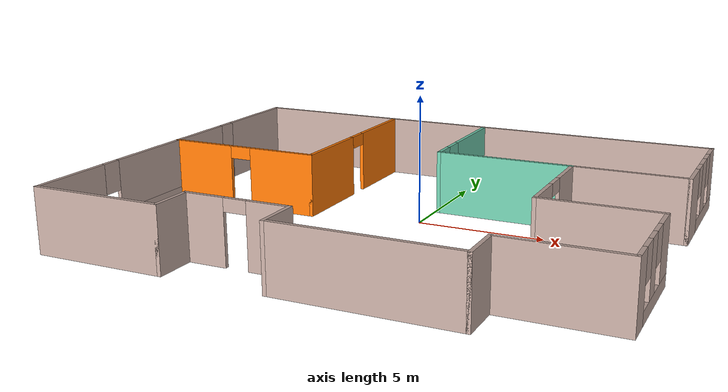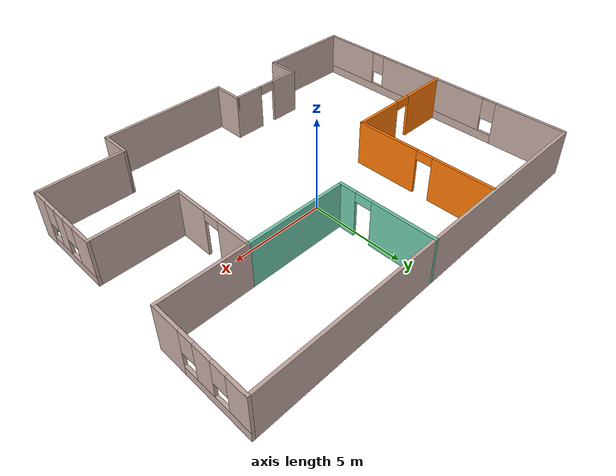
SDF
<?xml version='1.0'?>
<sdf version='1.6'>
  <model name='Office'>
    <pose frame=''>-0.377095 -1.10442 0 0 -0 0</pose>
    <link name='Wall_12'>
      <pose frame=''>-10.1892 -0.024999 0 0 0 -1.5708</pose>
      <visual name='Wall_12_Visual_0'>
        <pose frame=''>-5.93121 0 1.25 0 -0 0</pose>
        <geometry>
          <box>
            <size>3.88759 0.15 2.5</size>
          </box>
        </geometry>
        <material>
          <script>
            <uri>file://media/materials/scripts/gazebo.material</uri>
            <name>Gazebo/Grey</name>
          </script>
          <ambient>0.760784 0.662745 0.627451 1</ambient>
        </material>
        <meta>
          <layer>0</layer>
        </meta>
      </visual>
      <collision name='Wall_12_Collision_0'>
        <geometry>
          <box>
            <size>3.88759 0.15 2.5</size>
          </box>
        </geometry>
        <pose frame=''>-5.93121 0 1.25 0 -0 0</pose>
      </collision>
      <visual name='Wall_12_Visual_1'>
        <pose frame=''>1.94379 0 0.25 0 -0 0</pose>
        <geometry>
          <box>
            <size>11.8624 0.15 0.5</size>
          </box>
        </geometry>
        <material>
          <script>
            <uri>file://media/materials/scripts/gazebo.material</uri>
            <name>Gazebo/Grey</name>
          </script>
          <ambient>0.760784 0.662745 0.627451 1</ambient>
        </material>
        <meta>
          <layer>0</layer>
        </meta>
      </visual>
      <collision name='Wall_12_Collision_1'>
        <geometry>
          <box>
            <size>11.8624 0.15 0.5</size>
          </box>
        </geometry>
        <pose frame=''>1.94379 0 0.25 0 -0 0</pose>
      </collision>
      <visual name='Wall_12_Visual_2'>
        <pose frame=''>0.229137 0 1.5 0 -0 0</pose>
        <geometry>
          <box>
            <size>6.8331 0.15 2</size>
          </box>
        </geometry>
        <material>
          <script>
            <uri>file://media/materials/scripts/gazebo.material</uri>
            <name>Gazebo/Grey</name>
          </script>
          <ambient>0.760784 0.662745 0.627451 1</ambient>
        </material>
        <meta>
          <layer>0</layer>
        </meta>
      </visual>
      <collision name='Wall_12_Collision_2'>
        <geometry>
          <box>
            <size>6.8331 0.15 2</size>
          </box>
        </geometry>
        <pose frame=''>0.229137 0 1.5 0 -0 0</pose>
      </collision>
      <visual name='Wall_12_Visual_3'>
        <pose frame=''>6.16034 0 1.5 0 -0 0</pose>
        <geometry>
          <box>
            <size>3.42931 0.15 2</size>
          </box>
        </geometry>
        <material>
          <script>
            <uri>file://media/materials/scripts/gazebo.material</uri>
            <name>Gazebo/Grey</name>
          </script>
          <ambient>0.760784 0.662745 0.627451 1</ambient>
        </material>
        <meta>
          <layer>0</layer>
        </meta>
      </visual>
      <collision name='Wall_12_Collision_3'>
        <geometry>
          <box>
            <size>3.42931 0.15 2</size>
          </box>
        </geometry>
        <pose frame=''>6.16034 0 1.5 0 -0 0</pose>
      </collision>
      <visual name='Wall_12_Visual_4'>
        <pose frame=''>-3.58741 0 1.9 0 -0 0</pose>
        <geometry>
          <box>
            <size>0.8 0.15 1.2</size>
          </box>
        </geometry>
        <material>
          <script>
            <uri>file://media/materials/scripts/gazebo.material</uri>
            <name>Gazebo/Grey</name>
          </script>
          <ambient>0.760784 0.662745 0.627451 1</ambient>
        </material>
        <meta>
          <layer>0</layer>
        </meta>
      </visual>
      <collision name='Wall_12_Collision_4'>
        <geometry>
          <box>
            <size>0.8 0.15 1.2</size>
          </box>
        </geometry>
        <pose frame=''>-3.58741 0 1.9 0 -0 0</pose>
      </collision>
      <visual name='Wall_12_Visual_5'>
        <pose frame=''>4.04569 0 1.9 0 -0 0</pose>
        <geometry>
          <box>
            <size>0.8 0.15 1.2</size>
          </box>
        </geometry>
        <material>
          <script>
            <uri>file://media/materials/scripts/gazebo.material</uri>
            <name>Gazebo/Grey</name>
          </script>
          <ambient>0.760784 0.662745 0.627451 1</ambient>
        </material>
        <meta>
          <layer>0</layer>
        </meta>
      </visual>
      <collision name='Wall_12_Collision_5'>
        <geometry>
          <box>
            <size>0.8 0.15 1.2</size>
          </box>
        </geometry>
        <pose frame=''>4.04569 0 1.9 0 -0 0</pose>
      </collision>
    </link>
    <link name='Wall_13'>
      <collision name='Wall_13_Collision'>
        <geometry>
          <box>
            <size>5.25 0.15 2.5</size>
          </box>
        </geometry>
        <pose frame=''>0 0 1.25 0 -0 0</pose>
      </collision>
      <visual name='Wall_13_Visual'>
        <pose frame=''>0 0 1.25 0 -0 0</pose>
        <geometry>
          <box>
            <size>5.25 0.15 2.5</size>
          </box>
        </geometry>
        <material>
          <script>
            <uri>file://media/materials/scripts/gazebo.material</uri>
            <name>Gazebo/Grey</name>
          </script>
          <ambient>0.760784 0.662745 0.627451 1</ambient>
        </material>
        <meta>
          <layer>0</layer>
        </meta>
      </visual>
      <pose frame=''>-7.63921 -7.825 0 0 -0 0</pose>
    </link>
    <link name='Wall_14'>
      <collision name='Wall_14_Collision'>
        <geometry>
          <box>
            <size>1.75 0.15 2.5</size>
          </box>
        </geometry>
        <pose frame=''>0 0 1.25 0 -0 0</pose>
      </collision>
      <visual name='Wall_14_Visual'>
        <pose frame=''>0 0 1.25 0 -0 0</pose>
        <geometry>
          <box>
            <size>1.75 0.15 2.5</size>
          </box>
        </geometry>
        <material>
          <script>
            <uri>file://media/materials/scripts/gazebo.material</uri>
            <name>Gazebo/Grey</name>
          </script>
          <ambient>0.760784 0.662745 0.627451 1</ambient>
        </material>
        <meta>
          <layer>0</layer>
        </meta>
      </visual>
      <pose frame=''>-5.08921 -7.025 0 0 -0 1.5708</pose>
    </link>
    <link name='Wall_15'>
      <pose frame=''>-3.03921 -6.225 0 0 -0 0</pose>
      <visual name='Wall_15_Visual_0'>
        <pose frame=''>-1.30944 0 1.25 0 -0 0</pose>
        <geometry>
          <box>
            <size>1.63111 0.15 2.5</size>
          </box>
        </geometry>
        <material>
          <script>
            <uri>file://media/materials/scripts/gazebo.material</uri>
            <name>Gazebo/Grey</name>
          </script>
          <ambient>0.760784 0.662745 0.627451 1</ambient>
        </material>
        <meta>
          <layer>0</layer>
        </meta>
      </visual>
      <collision name='Wall_15_Collision_0'>
        <geometry>
          <box>
            <size>1.63111 0.15 2.5</size>
          </box>
        </geometry>
        <pose frame=''>-1.30944 0 1.25 0 -0 0</pose>
      </collision>
      <visual name='Wall_15_Visual_1'>
        <pose frame=''>1.26555 0 1.25 0 -0 0</pose>
        <geometry>
          <box>
            <size>1.71889 0.15 2.5</size>
          </box>
        </geometry>
        <material>
          <script>
            <uri>file://media/materials/scripts/gazebo.material</uri>
            <name>Gazebo/Grey</name>
          </script>
          <ambient>0.760784 0.662745 0.627451 1</ambient>
        </material>
        <meta>
          <layer>0</layer>
        </meta>
      </visual>
      <collision name='Wall_15_Collision_1'>
        <geometry>
          <box>
            <size>1.71889 0.15 2.5</size>
          </box>
        </geometry>
        <pose frame=''>1.26555 0 1.25 0 -0 0</pose>
      </collision>
      <visual name='Wall_15_Visual_2'>
        <pose frame=''>-0.04389 0 2.25 0 -0 0</pose>
        <geometry>
          <box>
            <size>0.9 0.15 0.5</size>
          </box>
        </geometry>
        <material>
          <script>
            <uri>file://media/materials/scripts/gazebo.material</uri>
            <name>Gazebo/Grey</name>
          </script>
          <ambient>0.760784 0.662745 0.627451 1</ambient>
        </material>
        <meta>
          <layer>0</layer>
        </meta>
      </visual>
      <collision name='Wall_15_Collision_2'>
        <geometry>
          <box>
            <size>0.9 0.15 0.5</size>
          </box>
        </geometry>
        <pose frame=''>-0.04389 0 2.25 0 -0 0</pose>
      </collision>
    </link>
    <link name='Wall_16'>
      <collision name='Wall_16_Collision'>
        <geometry>
          <box>
            <size>1.75 0.15 2.5</size>
          </box>
        </geometry>
        <pose frame=''>0 0 1.25 0 -0 0</pose>
      </collision>
      <visual name='Wall_16_Visual'>
        <pose frame=''>0 0 1.25 0 -0 0</pose>
        <geometry>
          <box>
            <size>1.75 0.15 2.5</size>
          </box>
        </geometry>
        <material>
          <script>
            <uri>file://media/materials/scripts/gazebo.material</uri>
            <name>Gazebo/Grey</name>
          </script>
          <ambient>0.760784 0.662745 0.627451 1</ambient>
        </material>
        <meta>
          <layer>0</layer>
        </meta>
      </visual>
      <pose frame=''>-0.98921 -7.025 0 0 0 -1.5708</pose>
    </link>
    <link name='Wall_17'>
      <collision name='Wall_17_Collision'>
        <geometry>
          <box>
            <size>7 0.15 2.5</size>
          </box>
        </geometry>
        <pose frame=''>0 0 1.25 0 -0 0</pose>
      </collision>
      <visual name='Wall_17_Visual'>
        <pose frame=''>0 0 1.25 0 -0 0</pose>
        <geometry>
          <box>
            <size>7 0.15 2.5</size>
          </box>
        </geometry>
        <material>
          <script>
            <uri>file://media/materials/scripts/gazebo.material</uri>
            <name>Gazebo/Grey</name>
          </script>
          <ambient>0.760784 0.662745 0.627451 1</ambient>
        </material>
        <meta>
          <layer>0</layer>
        </meta>
      </visual>
      <pose frame=''>2.43579 -7.825 0 0 -0 0</pose>
    </link>
    <link name='Wall_18'>
      <collision name='Wall_18_Collision'>
        <geometry>
          <box>
            <size>1.75 0.15 2.5</size>
          </box>
        </geometry>
        <pose frame=''>0 0 1.25 0 -0 0</pose>
      </collision>
      <visual name='Wall_18_Visual'>
        <pose frame=''>0 0 1.25 0 -0 0</pose>
        <geometry>
          <box>
            <size>1.75 0.15 2.5</size>
          </box>
        </geometry>
        <material>
          <script>
            <uri>file://media/materials/scripts/gazebo.material</uri>
            <name>Gazebo/Grey</name>
          </script>
          <ambient>0.760784 0.662745 0.627451 1</ambient>
        </material>
        <meta>
          <layer>0</layer>
        </meta>
      </visual>
      <pose frame=''>5.86079 -7.025 0 0 -0 1.5708</pose>
    </link>
    <link name='Wall_19'>
      <collision name='Wall_19_Collision'>
        <geometry>
          <box>
            <size>4.5 0.15 2.5</size>
          </box>
        </geometry>
        <pose frame=''>0 0 1.25 0 -0 0</pose>
      </collision>
      <visual name='Wall_19_Visual'>
        <pose frame=''>0 0 1.25 0 -0 0</pose>
        <geometry>
          <box>
            <size>4.5 0.15 2.5</size>
          </box>
        </geometry>
        <material>
          <script>
            <uri>file://media/materials/scripts/gazebo.material</uri>
            <name>Gazebo/Grey</name>
          </script>
          <ambient>0.760784 0.662745 0.627451 1</ambient>
        </material>
        <meta>
          <layer>0</layer>
        </meta>
      </visual>
      <pose frame=''>8.03579 -6.225 0 0 -0 0</pose>
    </link>
    <link name='Wall_20'>
      <pose frame=''>10.2108 -4.05 0 0 -0 1.5708</pose>
      <visual name='Wall_20_Visual_0'>
        <pose frame=''>-1.77798 0 1.25 0 -0 0</pose>
        <geometry>
          <box>
            <size>0.944037 0.15 2.5</size>
          </box>
        </geometry>
        <material>
          <script>
            <uri>file://media/materials/scripts/gazebo.material</uri>
            <name>Gazebo/Grey</name>
          </script>
          <ambient>0.760784 0.662745 0.627451 1</ambient>
        </material>
        <meta>
          <layer>0</layer>
        </meta>
      </visual>
      <collision name='Wall_20_Collision_0'>
        <geometry>
          <box>
            <size>0.944037 0.15 2.5</size>
          </box>
        </geometry>
        <pose frame=''>-1.77798 0 1.25 0 -0 0</pose>
      </collision>
      <visual name='Wall_20_Visual_1'>
        <pose frame=''>0.472018 0 0.25 0 -0 0</pose>
        <geometry>
          <box>
            <size>3.55596 0.15 0.5</size>
          </box>
        </geometry>
        <material>
          <script>
            <uri>file://media/materials/scripts/gazebo.material</uri>
            <name>Gazebo/Grey</name>
          </script>
          <ambient>0.760784 0.662745 0.627451 1</ambient>
        </material>
        <meta>
          <layer>0</layer>
        </meta>
      </visual>
      <collision name='Wall_20_Collision_1'>
        <geometry>
          <box>
            <size>3.55596 0.15 0.5</size>
          </box>
        </geometry>
        <pose frame=''>0.472018 0 0.25 0 -0 0</pose>
      </collision>
      <visual name='Wall_20_Visual_2'>
        <pose frame=''>-0.132031 0 1.5 0 -0 0</pose>
        <geometry>
          <box>
            <size>0.747865 0.15 2</size>
          </box>
        </geometry>
        <material>
          <script>
            <uri>file://media/materials/scripts/gazebo.material</uri>
            <name>Gazebo/Grey</name>
          </script>
          <ambient>0.760784 0.662745 0.627451 1</ambient>
        </material>
        <meta>
          <layer>0</layer>
        </meta>
      </visual>
      <collision name='Wall_20_Collision_2'>
        <geometry>
          <box>
            <size>0.747865 0.15 2</size>
          </box>
        </geometry>
        <pose frame=''>-0.132031 0 1.5 0 -0 0</pose>
      </collision>
      <visual name='Wall_20_Visual_3'>
        <pose frame=''>1.64595 0 1.5 0 -0 0</pose>
        <geometry>
          <box>
            <size>1.2081 0.15 2</size>
          </box>
        </geometry>
        <material>
          <script>
            <uri>file://media/materials/scripts/gazebo.material</uri>
            <name>Gazebo/Grey</name>
          </script>
          <ambient>0.760784 0.662745 0.627451 1</ambient>
        </material>
        <meta>
          <layer>0</layer>
        </meta>
      </visual>
      <collision name='Wall_20_Collision_3'>
        <geometry>
          <box>
            <size>1.2081 0.15 2</size>
          </box>
        </geometry>
        <pose frame=''>1.64595 0 1.5 0 -0 0</pose>
      </collision>
      <visual name='Wall_20_Visual_4'>
        <pose frame=''>-0.905963 0 1.9 0 -0 0</pose>
        <geometry>
          <box>
            <size>0.8 0.15 1.2</size>
          </box>
        </geometry>
        <material>
          <script>
            <uri>file://media/materials/scripts/gazebo.material</uri>
            <name>Gazebo/Grey</name>
          </script>
          <ambient>0.760784 0.662745 0.627451 1</ambient>
        </material>
        <meta>
          <layer>0</layer>
        </meta>
      </visual>
      <collision name='Wall_20_Collision_4'>
        <geometry>
          <box>
            <size>0.8 0.15 1.2</size>
          </box>
        </geometry>
        <pose frame=''>-0.905963 0 1.9 0 -0 0</pose>
      </collision>
      <visual name='Wall_20_Visual_5'>
        <pose frame=''>0.641902 0 1.9 0 -0 0</pose>
        <geometry>
          <box>
            <size>0.8 0.15 1.2</size>
          </box>
        </geometry>
        <material>
          <script>
            <uri>file://media/materials/scripts/gazebo.material</uri>
            <name>Gazebo/Grey</name>
          </script>
          <ambient>0.760784 0.662745 0.627451 1</ambient>
        </material>
        <meta>
          <layer>0</layer>
        </meta>
      </visual>
      <collision name='Wall_20_Collision_5'>
        <geometry>
          <box>
            <size>0.8 0.15 1.2</size>
          </box>
        </geometry>
        <pose frame=''>0.641902 0 1.9 0 -0 0</pose>
      </collision>
    </link>
    <link name='Wall_21'>
      <collision name='Wall_21_Collision'>
        <geometry>
          <box>
            <size>4.5 0.15 2.5</size>
          </box>
        </geometry>
        <pose frame=''>0 0 1.25 0 -0 0</pose>
      </collision>
      <visual name='Wall_21_Visual'>
        <pose frame=''>0 0 1.25 0 -0 0</pose>
        <geometry>
          <box>
            <size>4.5 0.15 2.5</size>
          </box>
        </geometry>
        <material>
          <script>
            <uri>file://media/materials/scripts/gazebo.material</uri>
            <name>Gazebo/Grey</name>
          </script>
          <ambient>0.760784 0.662745 0.627451 1</ambient>
        </material>
        <meta>
          <layer>0</layer>
        </meta>
      </visual>
      <pose frame=''>8.03579 -1.875 0 0 -0 3.14159</pose>
    </link>
    <link name='Wall_22'>
      <pose frame=''>5.86079 0.425001 0 0 -0 1.5708</pose>
      <visual name='Wall_22_Visual_0'>
        <pose frame=''>-1.41181 0 1.25 0 -0 0</pose>
        <geometry>
          <box>
            <size>1.92639 0.15 2.5</size>
          </box>
        </geometry>
        <material>
          <script>
            <uri>file://media/materials/scripts/gazebo.material</uri>
            <name>Gazebo/Grey</name>
          </script>
          <ambient>0.760784 0.662745 0.627451 1</ambient>
        </material>
        <meta>
          <layer>0</layer>
        </meta>
      </visual>
      <collision name='Wall_22_Collision_0'>
        <geometry>
          <box>
            <size>1.92639 0.15 2.5</size>
          </box>
        </geometry>
        <pose frame=''>-1.41181 0 1.25 0 -0 0</pose>
      </collision>
      <visual name='Wall_22_Visual_1'>
        <pose frame=''>1.41319 0 1.25 0 -0 0</pose>
        <geometry>
          <box>
            <size>1.92361 0.15 2.5</size>
          </box>
        </geometry>
        <material>
          <script>
            <uri>file://media/materials/scripts/gazebo.material</uri>
            <name>Gazebo/Grey</name>
          </script>
          <ambient>0.760784 0.662745 0.627451 1</ambient>
        </material>
        <meta>
          <layer>0</layer>
        </meta>
      </visual>
      <collision name='Wall_22_Collision_1'>
        <geometry>
          <box>
            <size>1.92361 0.15 2.5</size>
          </box>
        </geometry>
        <pose frame=''>1.41319 0 1.25 0 -0 0</pose>
      </collision>
      <visual name='Wall_22_Visual_2'>
        <pose frame=''>0.001387 0 2.25 0 -0 0</pose>
        <geometry>
          <box>
            <size>0.9 0.15 0.5</size>
          </box>
        </geometry>
        <material>
          <script>
            <uri>file://media/materials/scripts/gazebo.material</uri>
            <name>Gazebo/Grey</name>
          </script>
          <ambient>0.760784 0.662745 0.627451 1</ambient>
        </material>
        <meta>
          <layer>0</layer>
        </meta>
      </visual>
      <collision name='Wall_22_Collision_2'>
        <geometry>
          <box>
            <size>0.9 0.15 0.5</size>
          </box>
        </geometry>
        <pose frame=''>0.001387 0 2.25 0 -0 0</pose>
      </collision>
    </link>
    <link name='Wall_23'>
      <collision name='Wall_23_Collision'>
        <geometry>
          <box>
            <size>4.5 0.15 2.5</size>
          </box>
        </geometry>
        <pose frame=''>0 0 1.25 0 -0 0</pose>
      </collision>
      <visual name='Wall_23_Visual'>
        <pose frame=''>0 0 1.25 0 -0 0</pose>
        <geometry>
          <box>
            <size>4.5 0.15 2.5</size>
          </box>
        </geometry>
        <material>
          <script>
            <uri>file://media/materials/scripts/gazebo.material</uri>
            <name>Gazebo/Grey</name>
          </script>
          <ambient>0.760784 0.662745 0.627451 1</ambient>
        </material>
        <meta>
          <layer>0</layer>
        </meta>
      </visual>
      <pose frame=''>8.03579 2.725 0 0 -0 0</pose>
    </link>
    <link name='Wall_24'>
      <pose frame=''>10.2108 5.275 0 0 -0 1.5708</pose>
      <visual name='Wall_24_Visual_0'>
        <pose frame=''>-1.82608 0 1.25 0 -0 0</pose>
        <geometry>
          <box>
            <size>1.59784 0.15 2.5</size>
          </box>
        </geometry>
        <material>
          <script>
            <uri>file://media/materials/scripts/gazebo.material</uri>
            <name>Gazebo/Grey</name>
          </script>
          <ambient>0.760784 0.662745 0.627451 1</ambient>
        </material>
        <meta>
          <layer>0</layer>
        </meta>
      </visual>
      <collision name='Wall_24_Collision_0'>
        <geometry>
          <box>
            <size>1.59784 0.15 2.5</size>
          </box>
        </geometry>
        <pose frame=''>-1.82608 0 1.25 0 -0 0</pose>
      </collision>
      <visual name='Wall_24_Visual_1'>
        <pose frame=''>0.798919 0 0.25 0 -0 0</pose>
        <geometry>
          <box>
            <size>3.65216 0.15 0.5</size>
          </box>
        </geometry>
        <material>
          <script>
            <uri>file://media/materials/scripts/gazebo.material</uri>
            <name>Gazebo/Grey</name>
          </script>
          <ambient>0.760784 0.662745 0.627451 1</ambient>
        </material>
        <meta>
          <layer>0</layer>
        </meta>
      </visual>
      <collision name='Wall_24_Collision_1'>
        <geometry>
          <box>
            <size>3.65216 0.15 0.5</size>
          </box>
        </geometry>
        <pose frame=''>0.798919 0 0.25 0 -0 0</pose>
      </collision>
      <visual name='Wall_24_Visual_2'>
        <pose frame=''>0.252308 0 1.5 0 -0 0</pose>
        <geometry>
          <box>
            <size>0.958938 0.15 2</size>
          </box>
        </geometry>
        <material>
          <script>
            <uri>file://media/materials/scripts/gazebo.material</uri>
            <name>Gazebo/Grey</name>
          </script>
          <ambient>0.760784 0.662745 0.627451 1</ambient>
        </material>
        <meta>
          <layer>0</layer>
        </meta>
      </visual>
      <collision name='Wall_24_Collision_2'>
        <geometry>
          <box>
            <size>0.958938 0.15 2</size>
          </box>
        </geometry>
        <pose frame=''>0.252308 0 1.5 0 -0 0</pose>
      </collision>
      <visual name='Wall_24_Visual_3'>
        <pose frame=''>2.07839 0 1.5 0 -0 0</pose>
        <geometry>
          <box>
            <size>1.09322 0.15 2</size>
          </box>
        </geometry>
        <material>
          <script>
            <uri>file://media/materials/scripts/gazebo.material</uri>
            <name>Gazebo/Grey</name>
          </script>
          <ambient>0.760784 0.662745 0.627451 1</ambient>
        </material>
        <meta>
          <layer>0</layer>
        </meta>
      </visual>
      <collision name='Wall_24_Collision_3'>
        <geometry>
          <box>
            <size>1.09322 0.15 2</size>
          </box>
        </geometry>
        <pose frame=''>2.07839 0 1.5 0 -0 0</pose>
      </collision>
      <visual name='Wall_24_Visual_4'>
        <pose frame=''>-0.627161 0 1.9 0 -0 0</pose>
        <geometry>
          <box>
            <size>0.8 0.15 1.2</size>
          </box>
        </geometry>
        <material>
          <script>
            <uri>file://media/materials/scripts/gazebo.material</uri>
            <name>Gazebo/Grey</name>
          </script>
          <ambient>0.760784 0.662745 0.627451 1</ambient>
        </material>
        <meta>
          <layer>0</layer>
        </meta>
      </visual>
      <collision name='Wall_24_Collision_4'>
        <geometry>
          <box>
            <size>0.8 0.15 1.2</size>
          </box>
        </geometry>
        <pose frame=''>-0.627161 0 1.9 0 -0 0</pose>
      </collision>
      <visual name='Wall_24_Visual_5'>
        <pose frame=''>1.13178 0 1.9 0 -0 0</pose>
        <geometry>
          <box>
            <size>0.8 0.15 1.2</size>
          </box>
        </geometry>
        <material>
          <script>
            <uri>file://media/materials/scripts/gazebo.material</uri>
            <name>Gazebo/Grey</name>
          </script>
          <ambient>0.760784 0.662745 0.627451 1</ambient>
        </material>
        <meta>
          <layer>0</layer>
        </meta>
      </visual>
      <collision name='Wall_24_Collision_5'>
        <geometry>
          <box>
            <size>0.8 0.15 1.2</size>
          </box>
        </geometry>
        <pose frame=''>1.13178 0 1.9 0 -0 0</pose>
      </collision>
    </link>
    <link name='Wall_25'>
      <collision name='Wall_25_Collision'>
        <geometry>
          <box>
            <size>20.5 0.15 2.5</size>
          </box>
        </geometry>
        <pose frame=''>0 0 1.25 0 -0 0</pose>
      </collision>
      <visual name='Wall_25_Visual'>
        <pose frame=''>0 0 1.25 0 -0 0</pose>
        <geometry>
          <box>
            <size>20.5 0.15 2.5</size>
          </box>
        </geometry>
        <material>
          <script>
            <uri>file://media/materials/scripts/gazebo.material</uri>
            <name>Gazebo/Grey</name>
          </script>
          <ambient>0.760784 0.662745 0.627451 1</ambient>
        </material>
        <meta>
          <layer>0</layer>
        </meta>
      </visual>
      <pose frame=''>0.03579 7.825 0 0 -0 3.14159</pose>
    </link>
    <link name='Wall_27'>
      <pose frame=''>-7.03579 0.139084 0 0 -0 0</pose>
      <visual name='Wall_27_Visual_0'>
        <pose frame=''>-1.87618 0 1.25 0 -0 0</pose>
        <geometry>
          <box>
            <size>2.74763 0.15 2.5</size>
          </box>
        </geometry>
        <material>
          <script>
            <uri>file://media/materials/scripts/gazebo.material</uri>
            <name>Gazebo/Grey</name>
          </script>
          <ambient>0.996078 0.47451 0.0196078 1</ambient>
        </material>
        <meta>
          <layer>0</layer>
        </meta>
      </visual>
      <collision name='Wall_27_Collision_0'>
        <geometry>
          <box>
            <size>2.74763 0.15 2.5</size>
          </box>
        </geometry>
        <pose frame=''>-1.87618 0 1.25 0 -0 0</pose>
      </collision>
      <visual name='Wall_27_Visual_1'>
        <pose frame=''>1.82382 0 1.25 0 -0 0</pose>
        <geometry>
          <box>
            <size>2.85237 0.15 2.5</size>
          </box>
        </geometry>
        <material>
          <script>
            <uri>file://media/materials/scripts/gazebo.material</uri>
            <name>Gazebo/Grey</name>
          </script>
          <ambient>0.996078 0.47451 0.0196078 1</ambient>
        </material>
        <meta>
          <layer>0</layer>
        </meta>
      </visual>
      <collision name='Wall_27_Collision_1'>
        <geometry>
          <box>
            <size>2.85237 0.15 2.5</size>
          </box>
        </geometry>
        <pose frame=''>1.82382 0 1.25 0 -0 0</pose>
      </collision>
      <visual name='Wall_27_Visual_2'>
        <pose frame=''>-0.052368 0 2.25 0 -0 0</pose>
        <geometry>
          <box>
            <size>0.9 0.15 0.5</size>
          </box>
        </geometry>
        <material>
          <script>
            <uri>file://media/materials/scripts/gazebo.material</uri>
            <name>Gazebo/Grey</name>
          </script>
          <ambient>0.996078 0.47451 0.0196078 1</ambient>
        </material>
        <meta>
          <layer>0</layer>
        </meta>
      </visual>
      <collision name='Wall_27_Collision_2'>
        <geometry>
          <box>
            <size>0.9 0.15 0.5</size>
          </box>
        </geometry>
        <pose frame=''>-0.052368 0 2.25 0 -0 0</pose>
      </collision>
    </link>
    <link name='Wall_28'>
      <pose frame=''>-3.86079 3.93908 0 0 -0 1.5708</pose>
      <visual name='Wall_28_Visual_0'>
        <pose frame=''>-2.10796 0 1.25 0 -0 0</pose>
        <geometry>
          <box>
            <size>3.53407 0.15 2.5</size>
          </box>
        </geometry>
        <material>
          <script>
            <uri>file://media/materials/scripts/gazebo.material</uri>
            <name>Gazebo/Grey</name>
          </script>
          <ambient>0.996078 0.47451 0.0196078 1</ambient>
        </material>
        <meta>
          <layer>0</layer>
        </meta>
      </visual>
      <collision name='Wall_28_Collision_0'>
        <geometry>
          <box>
            <size>3.53407 0.15 2.5</size>
          </box>
        </geometry>
        <pose frame=''>-2.10796 0 1.25 0 -0 0</pose>
      </collision>
      <visual name='Wall_28_Visual_1'>
        <pose frame=''>2.21704 0 1.25 0 -0 0</pose>
        <geometry>
          <box>
            <size>3.31593 0.15 2.5</size>
          </box>
        </geometry>
        <material>
          <script>
            <uri>file://media/materials/scripts/gazebo.material</uri>
            <name>Gazebo/Grey</name>
          </script>
          <ambient>0.996078 0.47451 0.0196078 1</ambient>
        </material>
        <meta>
          <layer>0</layer>
        </meta>
      </visual>
      <collision name='Wall_28_Collision_1'>
        <geometry>
          <box>
            <size>3.31593 0.15 2.5</size>
          </box>
        </geometry>
        <pose frame=''>2.21704 0 1.25 0 -0 0</pose>
      </collision>
      <visual name='Wall_28_Visual_2'>
        <pose frame=''>0.109073 0 2.25 0 -0 0</pose>
        <geometry>
          <box>
            <size>0.9 0.15 0.5</size>
          </box>
        </geometry>
        <material>
          <script>
            <uri>file://media/materials/scripts/gazebo.material</uri>
            <name>Gazebo/Grey</name>
          </script>
          <ambient>0.996078 0.47451 0.0196078 1</ambient>
        </material>
        <meta>
          <layer>0</layer>
        </meta>
      </visual>
      <collision name='Wall_28_Collision_2'>
        <geometry>
          <box>
            <size>0.9 0.15 0.5</size>
          </box>
        </geometry>
        <pose frame=''>0.109073 0 2.25 0 -0 0</pose>
      </collision>
    </link>
    <link name='Wall_30'>
      <collision name='Wall_30_Collision'>
        <geometry>
          <box>
            <size>5.5 0.15 2.5</size>
          </box>
        </geometry>
        <pose frame=''>0 0 1.25 0 -0 0</pose>
      </collision>
      <visual name='Wall_30_Visual'>
        <pose frame=''>0 0 1.25 0 -0 0</pose>
        <geometry>
          <box>
            <size>5.5 0.15 2.5</size>
          </box>
        </geometry>
        <material>
          <script>
            <uri>file://media/materials/scripts/gazebo.material</uri>
            <name>Gazebo/Grey</name>
          </script>
          <ambient>0.435294 0.796078 0.67451 1</ambient>
        </material>
        <meta>
          <layer>0</layer>
        </meta>
      </visual>
      <pose frame=''>3.18579 2.725 0 0 -0 3.14159</pose>
    </link>
    <link name='Wall_31'>
      <pose frame=''>0.51079 5.275 0 0 -0 1.5708</pose>
      <visual name='Wall_31_Visual_0'>
        <pose frame=''>-2.13099 0 1.25 0 -0 0</pose>
        <geometry>
          <box>
            <size>0.988014 0.15 2.5</size>
          </box>
        </geometry>
        <material>
          <script>
            <uri>file://media/materials/scripts/gazebo.material</uri>
            <name>Gazebo/Grey</name>
          </script>
          <ambient>0.435294 0.796078 0.67451 1</ambient>
        </material>
        <meta>
          <layer>0</layer>
        </meta>
      </visual>
      <collision name='Wall_31_Collision_0'>
        <geometry>
          <box>
            <size>0.988014 0.15 2.5</size>
          </box>
        </geometry>
        <pose frame=''>-2.13099 0 1.25 0 -0 0</pose>
      </collision>
      <visual name='Wall_31_Visual_1'>
        <pose frame=''>0.944007 0 1.25 0 -0 0</pose>
        <geometry>
          <box>
            <size>3.36199 0.15 2.5</size>
          </box>
        </geometry>
        <material>
          <script>
            <uri>file://media/materials/scripts/gazebo.material</uri>
            <name>Gazebo/Grey</name>
          </script>
          <ambient>0.435294 0.796078 0.67451 1</ambient>
        </material>
        <meta>
          <layer>0</layer>
        </meta>
      </visual>
      <collision name='Wall_31_Collision_1'>
        <geometry>
          <box>
            <size>3.36199 0.15 2.5</size>
          </box>
        </geometry>
        <pose frame=''>0.944007 0 1.25 0 -0 0</pose>
      </collision>
      <visual name='Wall_31_Visual_2'>
        <pose frame=''>-1.18699 0 2.25 0 -0 0</pose>
        <geometry>
          <box>
            <size>0.9 0.15 0.5</size>
          </box>
        </geometry>
        <material>
          <script>
            <uri>file://media/materials/scripts/gazebo.material</uri>
            <name>Gazebo/Grey</name>
          </script>
          <ambient>0.435294 0.796078 0.67451 1</ambient>
        </material>
        <meta>
          <layer>0</layer>
        </meta>
      </visual>
      <collision name='Wall_31_Collision_2'>
        <geometry>
          <box>
            <size>0.9 0.15 0.5</size>
          </box>
        </geometry>
        <pose frame=''>-1.18699 0 2.25 0 -0 0</pose>
      </collision>
    </link>
    <static>1</static>
  </model>
</sdf>
